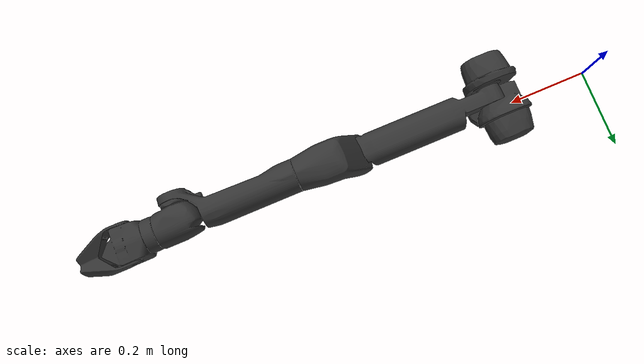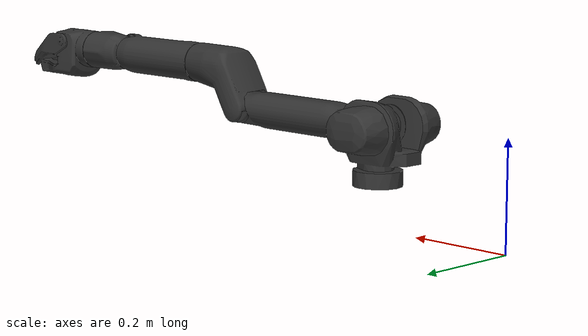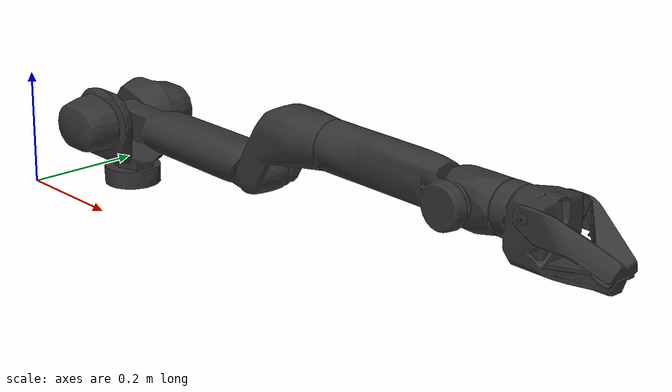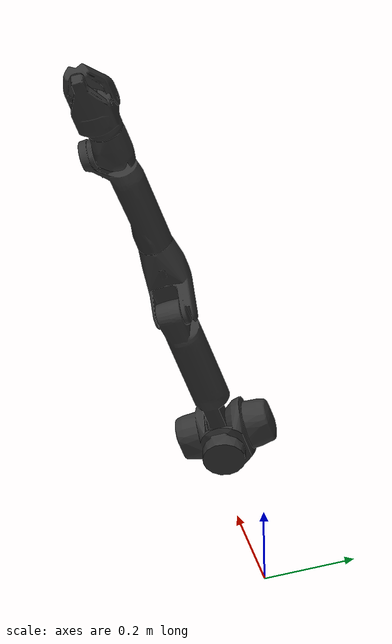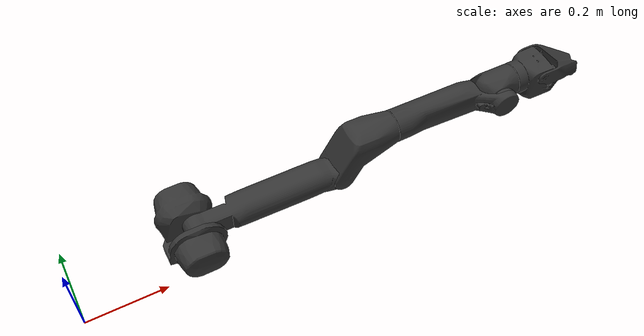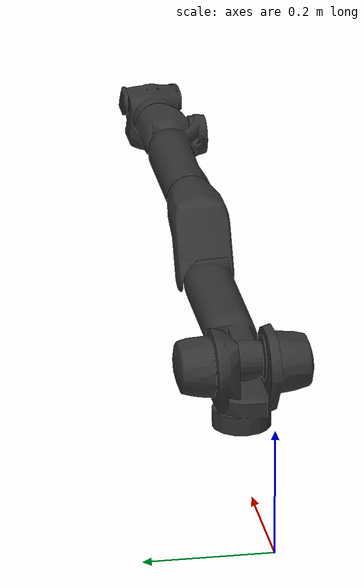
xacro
<?xml version="1.0"?>

<!-- Copyright (c) 2025 Robotics and AI Institute LLC dba RAI Institute. All rights reserved. -->

<robot name="standalone_arm" xmlns:xacro="http://www.ros.org/wiki/xacro">

  <xacro:include filename="$(find spot_description)/urdf/spot_arm_macro.urdf" />

  <!-- Root link -->
  <link name="body"/>

  <!-- Parameters -->
  <xacro:arg name="tf_prefix" default="" />
  <xacro:arg name="include_transmissions" default="false" />
  <xacro:arg name="gripperless" default="false" />

  <!-- Load arm -->
  <xacro:load_arm
		tf_prefix="$(arg tf_prefix)"
		gripperless="$(arg gripperless)"
		include_transmissions="$(arg include_transmissions)"/>

</robot>

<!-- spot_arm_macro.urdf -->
<!-- Copyright (c) 2025 Robotics and AI Institute LLC dba RAI Institute. All rights reserved. -->

<robot name="spot_arm" xmlns:xacro="http://www.ros.org/wiki/xacro">
  <xacro:macro name="load_arm" params="
    tf_prefix
    gripperless:=false
		custom_gripper_base_link:=''
		include_transmissions=false">

    <!-- Useful boolean variable for determining if custom gripper base link should be used in the xacro -->
    <xacro:property name="use_custom_gripper_base_link" value="${gripperless and custom_gripper_base_link!=''}"/>

    <link name="${tf_prefix}arm_link_sh0">
      <visual>
        <origin xyz="0 0 0" rpy="0 0 0" />
        <geometry>
          <mesh filename="package://spot_description/meshes/arm/visual/arm_link_sh0.obj" />
        </geometry>
        <material name="arm_link_sh0">
          <color rgba="0.2 0.2 0.2 1" />
        </material>
      </visual>
      <collision>
        <geometry>
          <mesh filename="package://spot_description/meshes/arm/collision/arm_link_sh0_base.obj" />
        </geometry>
      </collision>
      <collision>
        <geometry>
          <mesh filename="package://spot_description/meshes/arm/collision/arm_link_sh0_left_motor.obj" />
        </geometry>
      </collision>
      <collision>
        <geometry>
          <mesh filename="package://spot_description/meshes/arm/collision/arm_link_sh0_right_motor.obj" />
        </geometry>
      </collision>
      <inertial>
        <origin rpy="0.0013490340912847287 -0.15433618253071657 0.0066354181456347305"
          xyz="-0.012372709810733795 -4.5211403630673885e-05 -0.02103196457028389" />
        <mass value="2.3364000000000003" />
        <inertia ixx="0.009014303010689815" ixy="0.0" ixz="0.0" iyy="0.005835102417829581" iyz="0.0"
          izz="0.00778747846359954" />
      </inertial>
    </link>
    <joint name="${tf_prefix}arm_sh0" type="revolute">
      <origin xyz="0.292 0.0 0.188" rpy="0 0 0" />
      <axis xyz="0 0 1" />
      <parent link="${tf_prefix}body" />
      <child link="${tf_prefix}arm_link_sh0" />
      <limit effort="90.9" velocity="10.0" lower="-2.61799387799149441136"
        upper="3.14159265358979311599" />
    </joint>
		<xacro:if value="${include_transmissions}">
			<transmission name="${tf_prefix}arm_sh0_tran">
				<type>transmission_interface/SimpleTransmission</type>
				<joint name="${tf_prefix}arm_sh0">
					<hardwareInterface>EffortJointInterface</hardwareInterface>
				</joint>
				<actuator name="${tf_prefix}arm_sh0_motor">
					<hardwareInterface>EffortJointInterface</hardwareInterface>
				</actuator>
			</transmission>
		</xacro:if>

    <link name="${tf_prefix}arm_link_sh1">
      <visual>
        <origin xyz="0 0 0" rpy="0 0 0" />
        <geometry>
          <mesh filename="package://spot_description/meshes/arm/visual/arm_link_sh1.obj" />
        </geometry>
        <material name="arm_link_sh1">
          <color rgba="0.2 0.2 0.2 1" />
        </material>
      </visual>
      <inertial>
        <origin rpy="0.009910032200701302 -0.5123007314267984 0.002209016500439809"
          xyz="2.4176391889341176e-05 2.4116111490002368e-06 -1.0059113265015185e-05" />
        <mass value="0.2596" />
        <inertia ixx="0.00020292766231464653" ixy="0.0" ixz="0.0" iyy="0.00017078637725384855"
          iyz="0.0" izz="0.00020384964230406682" />
      </inertial>
    </link>
    <joint name="${tf_prefix}arm_sh1" type="revolute">
      <origin xyz="0.0 0.0 0.0" rpy="0 0 0" />
      <axis xyz="0 1 0" />
      <parent link="${tf_prefix}arm_link_sh0" />
      <child link="${tf_prefix}arm_link_sh1" />
      <limit effort="181.8" velocity="10.0" lower="-3.14159265358979311599"
        upper="0.52359877559829881565" />
    </joint>
		<xacro:if value="${include_transmissions}">
			<transmission name="${tf_prefix}arm_sh1_tran">
				<type>transmission_interface/SimpleTransmission</type>
				<joint name="${tf_prefix}arm_sh1">
					<hardwareInterface>EffortJointInterface</hardwareInterface>
				</joint>
				<actuator name="${tf_prefix}arm_sh1_motor">
					<hardwareInterface>EffortJointInterface</hardwareInterface>
				</actuator>
			</transmission>
		</xacro:if>

    <link name="${tf_prefix}arm_link_hr0">
      <visual>
        <origin xyz="0 0 0" rpy="0 0 0" />
        <geometry>
          <mesh filename="package://spot_description/meshes/arm/visual/arm_link_hr0.obj" />
        </geometry>
        <material name="arm_link_hr0">
          <color rgba="0.2 0.2 0.2 1" />
        </material>
      </visual>
      <collision>
        <geometry>
          <mesh filename="package://spot_description/meshes/arm/collision/arm_link_hr0.obj" />
        </geometry>
      </collision>
      <inertial>
        <origin rpy="-0.01179850657706405 0.0002834144901480151 -0.02372295500868482"
          xyz="0.17047011852264404 -0.0019251034827902913 4.483893280848861e-05" />
        <mass value="1e-06" />
        <inertia ixx="6.312631747339145e-10" ixy="0.0" ixz="0.0" iyy="1.1487063558949979e-08"
          iyz="0.0" izz="1.161105128440526e-08" />
      </inertial>
    </link>
    <joint name="${tf_prefix}arm_hr0" type="fixed">
      <origin xyz="0.0 0.0 0.0" rpy="0 0 0" />
      <parent link="${tf_prefix}arm_link_sh1" />
      <child link="${tf_prefix}arm_link_hr0" />
    </joint>

    <link name="${tf_prefix}arm_link_el0">
      <visual>
        <origin xyz="0 0 0" rpy="0 0 0" />
        <geometry>
          <mesh filename="package://spot_description/meshes/arm/visual/arm_link_el0.obj" />
        </geometry>
        <material name="arm_link_el0">
          <color rgba="0.2 0.2 0.2 1" />
        </material>
      </visual>
      <collision>
        <geometry>
          <mesh filename="package://spot_description/meshes/arm/collision/arm_link_el0.obj" />
        </geometry>
      </collision>
      <inertial>
        <origin rpy="-0.004185887288594259 -0.6136269547775202 -0.0004619387581783485"
          xyz="0.0553741455078125 0.00023603376757819206 0.04827198013663292" />
        <mass value="0.725" />
        <inertia ixx="0.0008215365829160558" ixy="0.0" ixz="0.0" iyy="0.0020047889807066404"
          iyz="0.0" izz="0.0019722797759789395" />
      </inertial>
    </link>
    <joint name="${tf_prefix}arm_el0" type="revolute">
      <origin xyz="0.3385 0 0" rpy="0 0 0" />
      <axis xyz="0 1 0" />
      <parent link="${tf_prefix}arm_link_hr0" />
      <child link="${tf_prefix}arm_link_el0" />
      <limit effort="90.9" velocity="10.0" lower="0" upper="3.14159265358979311599" />
    </joint>
		<xacro:if value="${include_transmissions}">
			<transmission name="${tf_prefix}arm_el0_tran">
				<type>transmission_interface/SimpleTransmission</type>
				<joint name="${tf_prefix}arm_el0">
					<hardwareInterface>EffortJointInterface</hardwareInterface>
				</joint>
				<actuator name="${tf_prefix}arm_el0_motor">
					<hardwareInterface>EffortJointInterface</hardwareInterface>
				</actuator>
			</transmission>
		</xacro:if>

    <link name="${tf_prefix}arm_link_el1">
      <visual>
        <origin xyz="0 0 0" rpy="0 0 0" />
        <geometry>
          <mesh filename="package://spot_description/meshes/arm/visual/arm_link_el1.obj" />
        </geometry>
        <material name="arm_link_el1">
          <color rgba="0.2 0.2 0.2 1" />
        </material>
      </visual>
      <collision>
        <geometry>
          <mesh filename="package://spot_description/meshes/arm/collision/arm_link_el1_main.obj" />
        </geometry>
      </collision>
      <collision>
        <geometry>
          <mesh filename="package://spot_description/meshes/arm/collision/arm_link_el1_lip.obj" />
        </geometry>
      </collision>
      <inertial>
        <origin rpy="-0.15027374227250867 -0.0007874585461915551 0.003728225436950172"
          xyz="-0.1257835328578949 -0.013684478588402271 0.00010157923679798841" />
        <mass value="0.725" />
        <inertia ixx="0.0006254807525240598" ixy="0.0" ixz="0.0" iyy="0.004402454711936095"
          iyz="0.0" izz="0.004515915146038191" />
      </inertial>
    </link>
    <joint name="${tf_prefix}arm_el1" type="revolute">
      <origin xyz="0.40330 0.0 0.0750" rpy="0 0 0" />
      <axis xyz="1 0 0" />
      <parent link="${tf_prefix}arm_link_el0" />
      <child link="${tf_prefix}arm_link_el1" />
      <limit effort="30.3" velocity="10.0" lower="-2.79252680319092716487"
        upper="2.79252680319092716487" />
    </joint>
		<xacro:if value="${include_transmissions}">
			<transmission name="${tf_prefix}arm_el1_tran">
				<type>transmission_interface/SimpleTransmission</type>
				<joint name="${tf_prefix}arm_el1">
					<hardwareInterface>EffortJointInterface</hardwareInterface>
				</joint>
				<actuator name="${tf_prefix}arm_el1_motor">
					<hardwareInterface>EffortJointInterface</hardwareInterface>
				</actuator>
			</transmission>
		</xacro:if>

    <link name="${tf_prefix}arm_link_wr0">
      <visual>
        <origin xyz="0 0 0" rpy="0 0 0" />
        <geometry>
          <mesh filename="package://spot_description/meshes/arm/visual/arm_link_wr0.obj" />
        </geometry>
        <material name="arm_link_wr0">
          <color rgba="0.2 0.2 0.2 1" />
        </material>
      </visual>
      <collision>
        <geometry>
          <mesh filename="package://spot_description/meshes/arm/collision/arm_link_wr0.obj" />
        </geometry>
      </collision>
      <inertial>
        <origin rpy="-0.4951534907966386 0.0033720434077784134 0.020027599337697932"
          xyz="0.008210677653551102 -0.012051000259816647 3.143483627354726e-05" />
        <mass value="0.98" />
        <inertia ixx="0.0009851320696685427" ixy="0.0" ixz="0.0" iyy="0.0008916145765810678"
          iyz="0.0" izz="0.0012354892751854467" />
      </inertial>
    </link>
    <joint name="${tf_prefix}arm_wr0" type="revolute">
      <origin xyz="0.0 0.0 0.0" rpy="0 0 0" />
      <axis xyz="0 1 0" />
      <parent link="${tf_prefix}arm_link_el1" />
      <child link="${tf_prefix}arm_link_wr0" />
      <limit effort="30.3" velocity="10.0" lower="-1.83259571459404613236"
        upper="1.83259571459404613236" />
    </joint>
		<xacro:if value="${include_transmissions}">
			<transmission name="${tf_prefix}arm_wr0_tran">
				<type>transmission_interface/SimpleTransmission</type>
				<joint name="${tf_prefix}arm_wr0">
					<hardwareInterface>EffortJointInterface</hardwareInterface>
				</joint>
				<actuator name="${tf_prefix}arm_wr0_motor">
					<hardwareInterface>EffortJointInterface</hardwareInterface>
				</actuator>
			</transmission>
		</xacro:if>

    <xacro:if value="${gripperless}">
      <xacro:unless value="${use_custom_gripper_base_link}">
        <link name="${tf_prefix}arm_link_wr1" />
      </xacro:unless>
    </xacro:if>
    <xacro:unless value="${gripperless}">
      <link name="${tf_prefix}arm_link_wr1">
        <visual>
          <origin xyz="0 0 0" rpy="0 0 0" />
          <geometry>
            <mesh filename="package://spot_description/meshes/arm/visual/arm_link_wr1.obj" />
          </geometry>
          <material name="arm_link_wr1">
            <color rgba="0.2 0.2 0.2 1" />
          </material>
        </visual>
        <collision>
          <geometry>
            <mesh filename="package://spot_description/meshes/arm/collision/arm_link_wr1.obj" />
          </geometry>
        </collision>
        <collision>
          <geometry>
            <mesh filename="package://spot_description/meshes/arm/collision/front_jaw.obj" />
          </geometry>
        </collision>
        <collision>
          <geometry>
            <mesh filename="package://spot_description/meshes/arm/collision/middle_jaw.obj" />
          </geometry>
        </collision>
        <collision>
          <geometry>
            <mesh filename="package://spot_description/meshes/arm/collision/jaw_tooth.obj" />
          </geometry>
        </collision>
        <inertial>
          <origin rpy="0.006393076449033863 0.2928526604761865 -0.022814984050994802"
            xyz="0.12516802549362183 0.00010137435310753062 -0.013997982256114483" />
          <mass value="0.785" />
          <inertia ixx="0.00076741362048185" ixy="0.0" ixz="0.0" iyy="0.0017628124054271809" iyz="0.0"
            izz="0.0016818105865345951" />
        </inertial>
      </link>
    </xacro:unless>
    <joint name="${tf_prefix}arm_wr1" type="revolute">
      <origin xyz="0.0 0.0 0.0" rpy="0 0 0" />
      <axis xyz="1 0 0" />
      <parent link="${tf_prefix}arm_link_wr0" />
      <!-- Child link can be different depending on gripperless status: -->
      <xacro:if value="${use_custom_gripper_base_link}">
        <!-- can optionally be the custom link specified via arg -->
        <child link="${custom_gripper_base_link}" />
      </xacro:if>
      <xacro:unless value="${use_custom_gripper_base_link}">
        <!-- else defaults to normal arm_link_wr1 -->
        <child link="${tf_prefix}arm_link_wr1" />
      </xacro:unless>
      <limit effort="30.3" velocity="10.0" lower="-2.87979326579064354163"
        upper="2.87979326579064354163" />
    </joint>
		<xacro:if value="${include_transmissions}">
			<transmission name="${tf_prefix}arm_wr1_tran">
				<type>transmission_interface/SimpleTransmission</type>
				<joint name="${tf_prefix}arm_wr1">
					<hardwareInterface>EffortJointInterface</hardwareInterface>
				</joint>
				<actuator name="${tf_prefix}arm_wr1_motor">
					<hardwareInterface>EffortJointInterface</hardwareInterface>
				</actuator>
			</transmission>
		</xacro:if>

    <!-- Finger joint and link shouldn't be included if gripperless -->
    <xacro:unless value="${gripperless}">
      <link name="${tf_prefix}arm_link_fngr">
        <visual>
          <origin xyz="0 0 0" rpy="0 0 0" />
          <geometry>
            <mesh filename="package://spot_description/meshes/arm/visual/arm_link_fngr.obj" />
          </geometry>
          <material name="arm_link_fngr">
            <color rgba="0.2 0.2 0.2 1" />
          </material>
        </visual>
        <collision>
          <geometry>
            <mesh filename="package://spot_description/meshes/arm/collision/left_hinge.obj" />
          </geometry>
        </collision>
        <collision>
          <geometry>
            <mesh filename="package://spot_description/meshes/arm/collision/left_finger.obj" />
          </geometry>
        </collision>
        <collision>
          <geometry>
            <mesh filename="package://spot_description/meshes/arm/collision/left_tooth.obj" />
          </geometry>
        </collision>
        <collision>
          <geometry>
            <mesh filename="package://spot_description/meshes/arm/collision/right_hinge.obj" />
          </geometry>
        </collision>
        <collision>
          <geometry>
            <mesh filename="package://spot_description/meshes/arm/collision/right_finger.obj" />
          </geometry>
        </collision>
        <collision>
          <geometry>
            <mesh filename="package://spot_description/meshes/arm/collision/right_tooth.obj" />
          </geometry>
        </collision>
        <inertial>
          <origin rpy="0.0003416659657240473 0.3751670012784243 -0.004058661249495721"
            xyz="0.04787873849272728 -0.00020676758140325546 -0.01628788933157921" />
          <mass value="0.2" />
          <inertia ixx="0.0001439963634171048" ixy="0.0" ixz="0.0" iyy="0.0003007126997998294"
            iyz="0.0" izz="0.0003912783268020657" />
        </inertial>
      </link>
      <joint name="${tf_prefix}arm_f1x" type="revolute">
        <origin xyz="0.11745 0 0.014820" rpy="0 0 0" />
        <axis xyz="0.0 1.0 0.0" />
        <parent link="${tf_prefix}arm_link_wr1" />
        <child link="${tf_prefix}arm_link_fngr" />
        <limit effort="15.32" velocity="10.0" lower="-1.57" upper="0.0" />
      </joint>
			<xacro:if value="${include_transmissions}">
				<transmission name="${tf_prefix}arm_f1x_tran">
					<type>transmission_interface/SimpleTransmission</type>
					<joint name="${tf_prefix}arm_f1x">
						<hardwareInterface>EffortJointInterface</hardwareInterface>
					</joint>
					<actuator name="${tf_prefix}arm_f1x_motor">
						<hardwareInterface>EffortJointInterface</hardwareInterface>
					</actuator>
				</transmission>
			</xacro:if>
    </xacro:unless>
  </xacro:macro>
</robot>
